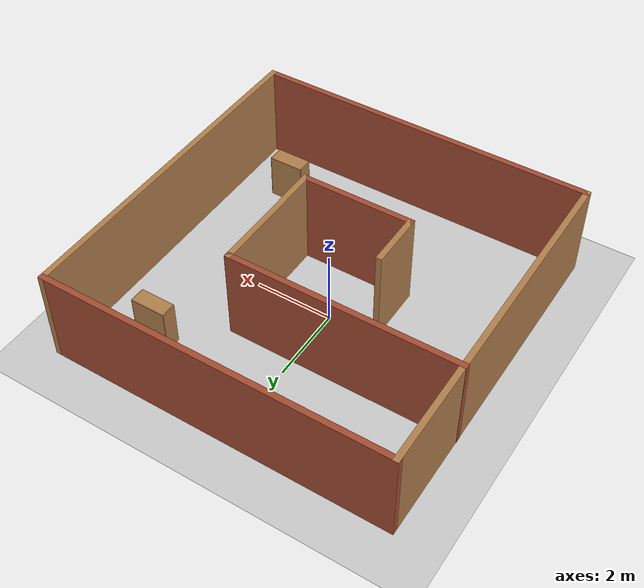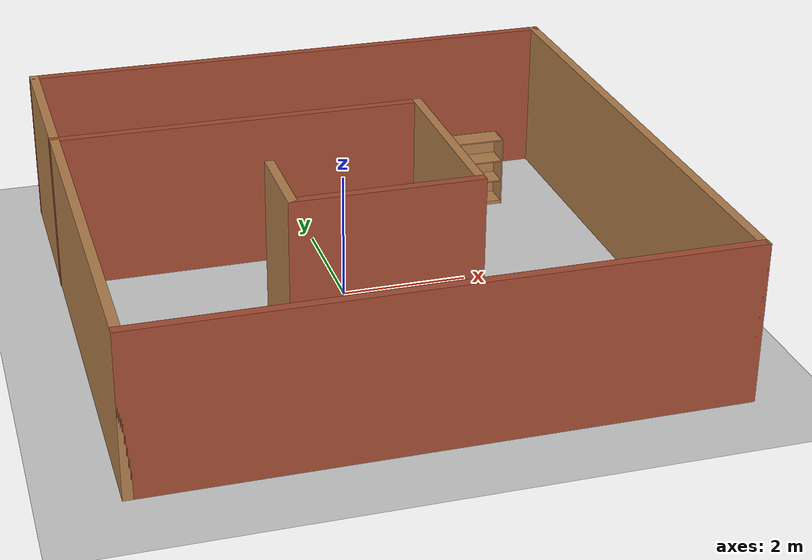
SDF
<sdf version="1.7">
 <world name="default">
  <light name="sun" type="directional">
   <pose>0 0 10 0 -0 0</pose>
   <diffuse>0.8 0.8 0.8 1</diffuse>
   <specular>0.2 0.2 0.2 1</specular>
   <attenuation>
    <range>1000</range>
    <constant>0.9</constant>
    <linear>0.01</linear>
    <quadratic>0.001</quadratic>
   </attenuation>
   <direction>-0.5 0.1 -0.9</direction>
   <spot><inner_angle>0</inner_angle><outer_angle>0</outer_angle><falloff>0</falloff></spot>
  </light>
  <model name="ground_plane">
   <static>1</static>
   <link name="link">
    <collision name="collision">
     <geometry><plane><normal>0 0 1</normal><size>100 100</size></plane></geometry>
     <surface><friction><ode><mu>100</mu><mu2>50</mu2></ode></friction></surface>
    </collision>
    <visual name="visual">
     <cast_shadows>0</cast_shadows>
     <geometry><plane><normal>0 0 1</normal><size>100 100</size></plane></geometry>
     <material>
      <script><uri>file://media/materials/scripts/gazebo.material</uri><name>Gazebo/Grey</name></script>
     </material>
    </visual>
   </link>
  </model>
  <gravity>0 0 -9.8</gravity>
  <magnetic_field>6e-06 2.3e-05 -4.2e-05</magnetic_field>
  <atmosphere type="adiabatic"/>
  <physics type="ode">
   <max_step_size>0.001</max_step_size>
   <real_time_factor>1</real_time_factor>
   <real_time_update_rate>1000</real_time_update_rate>
  </physics>
  <scene><ambient>0.4 0.4 0.4 1</ambient><background>0.7 0.7 0.7 1</background><shadows>1</shadows></scene>
  <spherical_coordinates>
   <surface_model>EARTH_WGS84</surface_model>
   <latitude_deg>0</latitude_deg>
   <longitude_deg>0</longitude_deg>
   <elevation>0</elevation>
   <heading_deg>0</heading_deg>
  </spherical_coordinates>
  <model name="new_demo">
   <pose>0.243748 -0.199614 0 0 -0 0</pose>
   <link name="Wall_13">
    <collision name="Wall_13_Collision">
     <geometry><box><size>9 0.15 2.5</size></box></geometry>
     <pose>0 0 1.25 0 -0 0</pose>
    </collision>
    <visual name="Wall_13_Visual">
     <pose>0 0 1.25 0 -0 0</pose>
     <geometry><box><size>9 0.15 2.5</size></box></geometry>
     <material>
      <script><uri>file://media/materials/scripts/gazebo.material</uri><name>Gazebo/Wood</name></script>
      <ambient>1 1 1 1</ambient>
     </material>
     <meta><layer>0</layer></meta>
    </visual>
    <pose>-4.42073 0 0 0 -0 -1.5708</pose>
   </link>
   <link name="Wall_14">
    <collision name="Wall_14_Collision">
     <geometry><box><size>9 0.15 2.5</size></box></geometry>
     <pose>0 0 1.25 0 -0 0</pose>
    </collision>
    <visual name="Wall_14_Visual">
     <pose>0 0 1.25 0 -0 0</pose>
     <geometry><box><size>9 0.15 2.5</size></box></geometry>
     <material>
      <script><uri>file://media/materials/scripts/gazebo.material</uri><name>Gazebo/Bricks</name></script>
      <ambient>1 1 1 1</ambient>
     </material>
     <meta><layer>0</layer></meta>
    </visual>
    <pose>0.004275 -4.425 0 0 -0 0</pose>
   </link>
   <link name="Wall_15">
    <collision name="Wall_15_Collision">
     <geometry><box><size>9 0.15 2.5</size></box></geometry>
     <pose>0 0 1.25 0 -0 0</pose>
    </collision>
    <visual name="Wall_15_Visual">
     <pose>0 0 1.25 0 -0 0</pose>
     <geometry><box><size>9 0.15 2.5</size></box></geometry>
     <material>
      <script><uri>file://media/materials/scripts/gazebo.material</uri><name>Gazebo/Wood</name></script>
      <ambient>1 1 1 1</ambient>
     </material>
     <meta><layer>0</layer></meta>
    </visual>
    <pose>4.42927 0 0 0 -0 1.5708</pose>
   </link>
   <link name="Wall_17">
    <collision name="Wall_17_Collision">
     <geometry><box><size>6 0.15 2.5</size></box></geometry>
     <pose>0 0 1.25 0 -0 0</pose>
    </collision>
    <visual name="Wall_17_Visual">
     <pose>0 0 1.25 0 -0 0</pose>
     <geometry><box><size>6 0.15 2.5</size></box></geometry>
     <material>
      <script><uri>file://media/materials/scripts/gazebo.material</uri><name>Gazebo/Bricks</name></script>
      <ambient>1 1 1 1</ambient>
     </material>
     <meta><layer>0</layer></meta>
    </visual>
    <pose>-1.50428 1.72713 0 0 -0 0</pose>
   </link>
   <link name="Wall_18">
    <collision name="Wall_18_Collision">
     <geometry><box><size>3.25 0.15 2.5</size></box></geometry>
     <pose>0 0 1.25 0 -0 0</pose>
    </collision>
    <visual name="Wall_18_Visual">
     <pose>0 0 1.25 0 -0 0</pose>
     <geometry><box><size>3.25 0.15 2.5</size></box></geometry>
     <material>
      <script><uri>file://media/materials/scripts/gazebo.material</uri><name>Gazebo/Wood</name></script>
      <ambient>1 1 1 1</ambient>
     </material>
     <meta><layer>0</layer></meta>
    </visual>
    <pose>1.42073 0.177125 0 0 -0 -1.5708</pose>
   </link>
   <link name="Wall_19">
    <collision name="Wall_19_Collision">
     <geometry><box><size>3 0.15 2.5</size></box></geometry>
     <pose>0 0 1.25 0 -0 0</pose>
    </collision>
    <visual name="Wall_19_Visual">
     <pose>0 0 1.25 0 -0 0</pose>
     <geometry><box><size>3 0.15 2.5</size></box></geometry>
     <material>
      <script><uri>file://media/materials/scripts/gazebo.material</uri><name>Gazebo/Bricks</name></script>
      <ambient>1 1 1 1</ambient>
     </material>
     <meta><layer>0</layer></meta>
    </visual>
    <pose>-0.004275 -1.37288 0 0 -0 3.14159</pose>
   </link>
   <link name="Wall_20">
    <collision name="Wall_20_Collision">
     <geometry><box><size>1.5 0.15 2.5</size></box></geometry>
     <pose>0 0 1.25 0 -0 0</pose>
    </collision>
    <visual name="Wall_20_Visual">
     <pose>0 0 1.25 0 -0 0</pose>
     <geometry><box><size>1.5 0.15 2.5</size></box></geometry>
     <material>
      <script><uri>file://media/materials/scripts/gazebo.material</uri><name>Gazebo/Wood</name></script>
      <ambient>1 1 1 1</ambient>
     </material>
     <meta><layer>0</layer></meta>
    </visual>
    <pose>-1.42928 -0.697875 0 0 -0 1.5708</pose>
   </link>
   <link name="Wall_9">
    <collision name="Wall_9_Collision">
     <geometry><box><size>9 0.15 2.5</size></box></geometry>
     <pose>0 0 1.25 0 -0 0</pose>
    </collision>
    <visual name="Wall_9_Visual">
     <pose>0 0 1.25 0 -0 0</pose>
     <geometry><box><size>9 0.15 2.5</size></box></geometry>
     <material>
      <script><uri>file://media/materials/scripts/gazebo.material</uri><name>Gazebo/Bricks</name></script>
      <ambient>1 1 1 1</ambient>
     </material>
     <meta><layer>0</layer></meta>
    </visual>
    <pose>0.004275 4.425 0 0 -0 3.14159</pose>
   </link>
   <static>1</static>
  </model>
  <model name="bookshelf">
   <static>1</static>
   <link name="link">
    <inertial><mass>1</mass></inertial>
    <collision name="back">
     <pose>0 0.005 0.6 0 -0 0</pose>
     <geometry><box><size>0.9 0.01 1.2</size></box></geometry>
    </collision>
    <visual name="visual1">
     <pose>0 0.005 0.6 0 -0 0</pose>
     <geometry><box><size>0.9 0.01 1.2</size></box></geometry>
     <material>
      <script><uri>file://media/materials/scripts/gazebo.material</uri><name>Gazebo/Wood</name></script>
     </material>
    </visual>
    <collision name="left_side">
     <pose>0.45 -0.195 0.6 0 -0 0</pose>
     <geometry><box><size>0.02 0.4 1.2</size></box></geometry>
    </collision>
    <visual name="visual2">
     <pose>0.45 -0.195 0.6 0 -0 0</pose>
     <geometry><box><size>0.02 0.4 1.2</size></box></geometry>
     <material>
      <script><uri>file://media/materials/scripts/gazebo.material</uri><name>Gazebo/Wood</name></script>
     </material>
    </visual>
    <collision name="right_side">
     <pose>-0.45 -0.195 0.6 0 -0 0</pose>
     <geometry><box><size>0.02 0.4 1.2</size></box></geometry>
    </collision>
    <visual name="visual3">
     <pose>-0.45 -0.195 0.6 0 -0 0</pose>
     <geometry><box><size>0.02 0.4 1.2</size></box></geometry>
     <material>
      <script><uri>file://media/materials/scripts/gazebo.material</uri><name>Gazebo/Wood</name></script>
     </material>
    </visual>
    <collision name="bottom">
     <pose>0 -0.195 0.03 0 -0 0</pose>
     <geometry><box><size>0.88 0.4 0.06</size></box></geometry>
    </collision>
    <visual name="visual4">
     <pose>0 -0.195 0.03 0 -0 0</pose>
     <geometry><box><size>0.88 0.4 0.06</size></box></geometry>
     <material>
      <script><uri>file://media/materials/scripts/gazebo.material</uri><name>Gazebo/Wood</name></script>
     </material>
    </visual>
    <collision name="top">
     <pose>0 -0.195 1.19 0 -0 0</pose>
     <geometry><box><size>0.88 0.4 0.02</size></box></geometry>
    </collision>
    <visual name="visual5">
     <pose>0 -0.195 1.19 0 -0 0</pose>
     <geometry><box><size>0.88 0.4 0.02</size></box></geometry>
     <material>
      <script><uri>file://media/materials/scripts/gazebo.material</uri><name>Gazebo/Wood</name></script>
     </material>
    </visual>
    <collision name="low_shelf">
     <pose>0 -0.195 0.43 0 -0 0</pose>
     <geometry><box><size>0.88 0.4 0.02</size></box></geometry>
    </collision>
    <visual name="visual6">
     <pose>0 -0.195 0.43 0 -0 0</pose>
     <geometry><box><size>0.88 0.4 0.02</size></box></geometry>
     <material>
      <script><uri>file://media/materials/scripts/gazebo.material</uri><name>Gazebo/Wood</name></script>
     </material>
    </visual>
    <collision name="high_shelf">
     <pose>0 -0.195 0.8 0 -0 0</pose>
     <geometry><box><size>0.88 0.4 0.02</size></box></geometry>
    </collision>
    <visual name="visual7">
     <pose>0 -0.195 0.8 0 -0 0</pose>
     <geometry><box><size>0.88 0.4 0.02</size></box></geometry>
     <material>
      <script><uri>file://media/materials/scripts/gazebo.material</uri><name>Gazebo/Wood</name></script>
     </material>
    </visual>
   </link>
   <pose>3.21261 -2.98646 0 0 -0 0</pose>
  </model>
  <model name="bookshelf_0">
   <static>1</static>
   <link name="link">
    <inertial><mass>1</mass></inertial>
    <collision name="back">
     <pose>0 0.005 0.6 0 -0 0</pose>
     <geometry><box><size>0.9 0.01 1.2</size></box></geometry>
    </collision>
    <visual name="visual1">
     <pose>0 0.005 0.6 0 -0 0</pose>
     <geometry><box><size>0.9 0.01 1.2</size></box></geometry>
     <material>
      <script><uri>file://media/materials/scripts/gazebo.material</uri><name>Gazebo/Wood</name></script>
     </material>
    </visual>
    <collision name="left_side">
     <pose>0.45 -0.195 0.6 0 -0 0</pose>
     <geometry><box><size>0.02 0.4 1.2</size></box></geometry>
    </collision>
    <visual name="visual2">
     <pose>0.45 -0.195 0.6 0 -0 0</pose>
     <geometry><box><size>0.02 0.4 1.2</size></box></geometry>
     <material>
      <script><uri>file://media/materials/scripts/gazebo.material</uri><name>Gazebo/Wood</name></script>
     </material>
    </visual>
    <collision name="right_side">
     <pose>-0.45 -0.195 0.6 0 -0 0</pose>
     <geometry><box><size>0.02 0.4 1.2</size></box></geometry>
    </collision>
    <visual name="visual3">
     <pose>-0.45 -0.195 0.6 0 -0 0</pose>
     <geometry><box><size>0.02 0.4 1.2</size></box></geometry>
     <material>
      <script><uri>file://media/materials/scripts/gazebo.material</uri><name>Gazebo/Wood</name></script>
     </material>
    </visual>
    <collision name="bottom">
     <pose>0 -0.195 0.03 0 -0 0</pose>
     <geometry><box><size>0.88 0.4 0.06</size></box></geometry>
    </collision>
    <visual name="visual4">
     <pose>0 -0.195 0.03 0 -0 0</pose>
     <geometry><box><size>0.88 0.4 0.06</size></box></geometry>
     <material>
      <script><uri>file://media/materials/scripts/gazebo.material</uri><name>Gazebo/Wood</name></script>
     </material>
    </visual>
    <collision name="top">
     <pose>0 -0.195 1.19 0 -0 0</pose>
     <geometry><box><size>0.88 0.4 0.02</size></box></geometry>
    </collision>
    <visual name="visual5">
     <pose>0 -0.195 1.19 0 -0 0</pose>
     <geometry><box><size>0.88 0.4 0.02</size></box></geometry>
     <material>
      <script><uri>file://media/materials/scripts/gazebo.material</uri><name>Gazebo/Wood</name></script>
     </material>
    </visual>
    <collision name="low_shelf">
     <pose>0 -0.195 0.43 0 -0 0</pose>
     <geometry><box><size>0.88 0.4 0.02</size></box></geometry>
    </collision>
    <visual name="visual6">
     <pose>0 -0.195 0.43 0 -0 0</pose>
     <geometry><box><size>0.88 0.4 0.02</size></box></geometry>
     <material>
      <script><uri>file://media/materials/scripts/gazebo.material</uri><name>Gazebo/Wood</name></script>
     </material>
    </visual>
    <collision name="high_shelf">
     <pose>0 -0.195 0.8 0 -0 0</pose>
     <geometry><box><size>0.88 0.4 0.02</size></box></geometry>
    </collision>
    <visual name="visual7">
     <pose>0 -0.195 0.8 0 -0 0</pose>
     <geometry><box><size>0.88 0.4 0.02</size></box></geometry>
     <material>
      <script><uri>file://media/materials/scripts/gazebo.material</uri><name>Gazebo/Wood</name></script>
     </material>
    </visual>
   </link>
   <pose>3.05836 2.86768 0 0 -0 0</pose>
  </model>
 </world>
</sdf>
